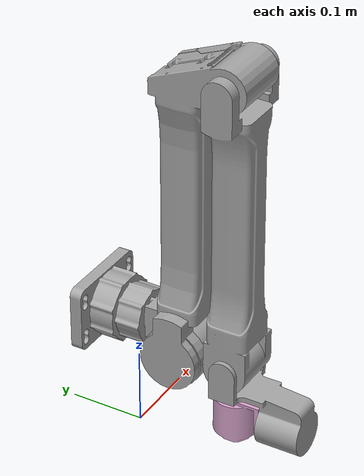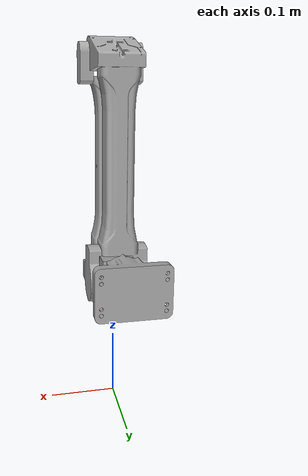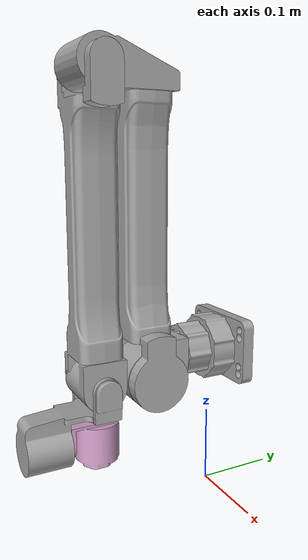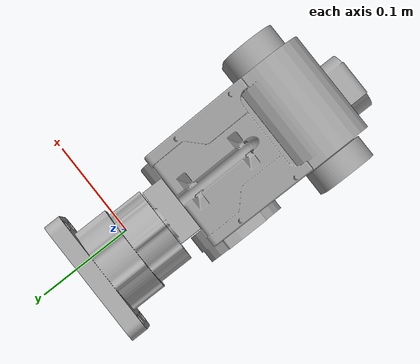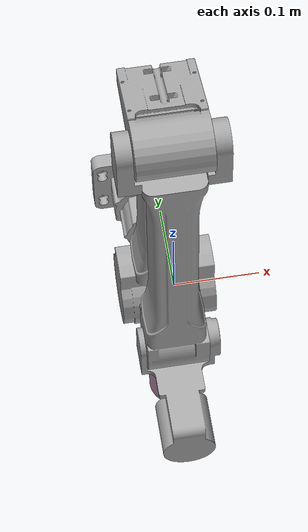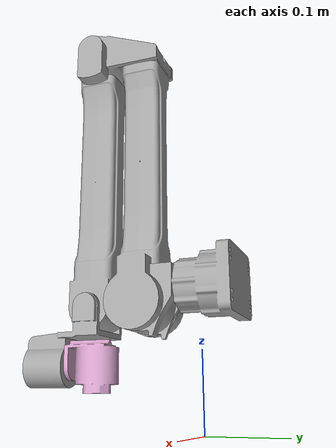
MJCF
<mujoco model="yam_pro">
  <compiler angle="radian" meshdir="assets"/>

  <asset>
    <mesh name="base"  file="base.stl"/>
    <mesh name="link1" file="link1.stl"/>
    <mesh name="link2" file="link2.stl"/>
    <mesh name="link3" file="link3.stl"/>
    <mesh name="link4" file="link4.stl"/>
    <mesh name="link5" file="link5.stl"/>
  </asset>

  <worldbody>
    <body name="base" pos="0 0 0" quat="1 0 0 0">
      <inertial pos="-3.83908409137e-05 2.40068981265e-05 0.0247677998591" quat="0.49938114478697948 0.50073961447194104 -0.50008727960892496 -0.4997909798136444" mass="0.873654" diaginertia="0.00067830593494507517 0.0015705906697095881 0.0016940403953453372"/>
      <geom pos="0.0374957881421 0.0464005994986 0.187501137731" quat="9.381838724410722e-07 0.70710807985877822 9.3818731858953273e-07 -0.70710548251068706" type="mesh" rgba="0.647059 0.647059 0.647059 1" mesh="base"/>
      <body name="link1" pos="-2.49777947114e-07 0 0.0679999999995" quat="9.3818411501280666e-07 0.70710807985877822 9.381875611610837e-07 -0.70710548251068706">
        <inertial pos="-0.0233636 -0.00172503 -0.00727828" quat="-0.64524361769733818 -0.21204348917963081 0.19681281961670494 0.70708057995669871" mass="0.101218" diaginertia="4.7181498384517786e-05 0.00010625072855078136 0.0001349130730647009"/>
        <joint name="joint1" pos="0 0 0" axis="-1 0 0" type="hinge" range="-2.61799 3.14159" actuatorfrcrange="-10 10"/>
        <geom pos="-0.119501 -0.0464 -0.0374968" quat="1 0 0 0" type="mesh" rgba="0.647059 0.647059 0.647059 1" mesh="link1"/>
        <body name="link2" pos="-0.0455 -0.0329 -0.02" quat="1 1.6811750000000164e-16 -9.5581999999999982e-16 1.7303650000000003e-15">
          <inertial pos="0.000134495 0.0336247 0.129165" quat="-2.3368104685381288e-05 0.70711781939337348 -0.00013679904709816199 0.70709572918828534" mass="1.52608" diaginertia="0.0008311292504908298 0.015165400733604792 0.01523770001590438"/>
          <joint name="joint2" pos="0 0 0" axis="-3.58252e-15 -1 3.35753e-16" type="hinge" range="0 3.66519" actuatorfrcrange="-10 10"/>
          <geom pos="-0.0740001 -0.0135 -0.0174977" quat="1 0 0 0" type="mesh" rgba="0.647059 0.647059 0.647059 1" mesh="link2"/>
          <body name="link3" pos="4.08431e-07 -0.00205 0.264" quat="1 -5.3991000000000092e-15 2.8574349999999998e-14 3.2007050000015427e-16">
            <inertial pos="-0.0556042 0.0357986 -0.135083" quat="0.6673095083601458 -0.084819836562637627 0.73417432797379689 0.092150265989044328" mass="0.982553" diaginertia="0.00087644191886574482 0.0076296046064632606 0.0076519794746709975"/>
            <joint name="joint3" pos="0 0 0" axis="4.54273e-15 1 1.04275e-14" type="hinge" range="0 3.14159" actuatorfrcrange="-10 10"/>
            <geom pos="-0.0740003 -0.01145 -0.281499" quat="1 0 0 0" type="mesh" rgba="0.647059 0.647059 0.647059 1" mesh="link3"/>
            <body name="link4" pos="-0.0600003 0.0688 -0.244999" quat="1 5.2137499999999605e-15 -1.8263150000000013e-14 -2.1700149999999048e-15">
              <inertial pos="-0.0548959 -0.0350242 -0.0575534" quat="0.10060722133102601 0.94108569945662934 -0.07975559657973047 0.31284970530350159" mass="0.462165" diaginertia="0.00028778996544839548 0.00076643008992378317 0.00078788794462782174"/>
              <joint name="joint4" pos="0 0 0" axis="0 1 0" type="hinge" range="-1.69297 1.5708" actuatorfrcrange="-10 10"/>
              <geom pos="-0.0138003 -0.0802502 -0.0364989" quat="1 0 0 0" type="mesh" rgba="0.647059 0.647059 0.647059 1" mesh="link4"/>
              <body name="link5" pos="-0.0403003 -0.0338507 -0.0739989" quat="1 -4.1908100000000015e-15 -1.1163449999999929e-15 -1.6792100000000047e-15">
                <inertial pos="0.0375847 -3.55003e-05 -0.000825911" quat="0.64668614070190822 0.64239183561513957 0.28865586152813083 -0.29292927229031912" mass="0.403307" diaginertia="0.00016964735642963316 0.00019568620481229821 0.00021979443875806869"/>
                <joint name="joint5" pos="0 0 0" axis="1 0 0" type="hinge" range="-1.5708 1.5708" actuatorfrcrange="-10 10"/>
                <geom pos="0.0265 -0.0463995 0.0375" quat="1 0 0 0" type="mesh" rgba="0.827451 0.623529 0.784314 1" mesh="link5"/>
                <body name="link6" pos="0.0404996 2.39858e-07 -0.0356" quat="1 3.3970050000000036e-15 -8.7934999999998608e-16 4.0981150000000029e-15">
                  <inertial pos="0 0 0" mass="1e-6" diaginertia="1e-9 1e-9 1e-9"/>
                  <joint name="joint6" pos="0 0 0" axis="1.46014e-15 2.40808e-14 -1" type="hinge" range="-2.0944 2.0944" actuatorfrcrange="-10 10"/>
                </body>
              </body>
            </body>
          </body>
        </body>
      </body>
    </body>
  </worldbody>
</mujoco>
